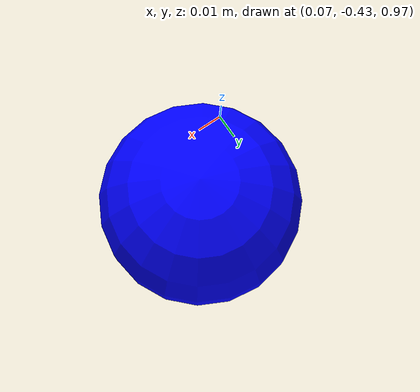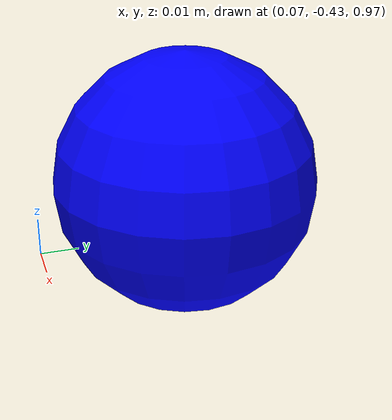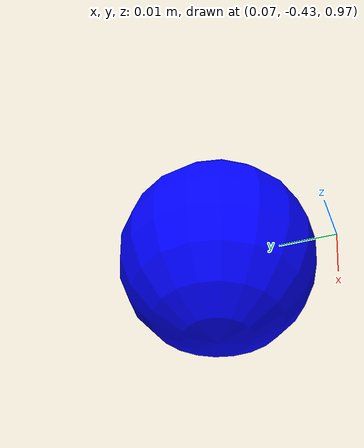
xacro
<?xml version="1.0"?>
<robot name="target" xmlns:xacro="http://www.ros.org/wiki/xacro" >

  <xacro:arg name="vel" default="1."/>

  <xacro:property name="offset" default=".4"/>
  <xacro:property name="radius" default=".1"/>
  <xacro:property name="size" default=".03"/>

  <link name="world"/>

  <joint name="world_joint" type="fixed">
	<origin xyz="0 ${-offset} 1" rpy="0 0. 0"/>
    <parent link="world"/>
    <child link="target/base_link"/>
  </joint>

  <link name="target/base_link">
    <inertial>
      <mass
        value="15.137" />
      <inertia
        ixx="1.1651"
        ixy="0.00079443"
        ixz="-5.3686E-06"
        iyy="1.1282"
        iyz="-0.004763"
        izz="2.2914" />
    </inertial>
  </link>

  <link name="target/ball">
    <inertial>
       <mass
        value="1." />
      <inertia
        ixx="0.147885"
        ixy="0.0000"
        ixz="-0.033179"
        iyy="0.196455"
        iyz="0.0000"
        izz="0.055095" />
    </inertial>
    <visual>
      <origin xyz="${radius} 0 0"/>
      <geometry>
        <sphere radius="${size}"/>
      </geometry>
      <material name="blue">
        <color
          rgba="0 0 1 1"/>
      </material>
    </visual>
  </link>

  <joint name="ball" type="continuous">
    <parent link="target/base_link" />
    <child link="target/ball" />
    <axis xyz="0 0 1" />
  </joint>

  <gazebo>
    <plugin
        filename="libignition-gazebo-joint-controller-system.so"
        name="ignition::gazebo::systems::JointController">
        <joint_name>ball</joint_name>
        <initial_velocity>$(arg vel)</initial_velocity>
    </plugin>

    <plugin
        filename="libignition-gazebo-joint-state-publisher-system.so"
        name="ignition::gazebo::systems::JointStatePublisher">
    <!-- Parameters would go here if there were any -->
    </plugin>

  </gazebo>

</robot>
